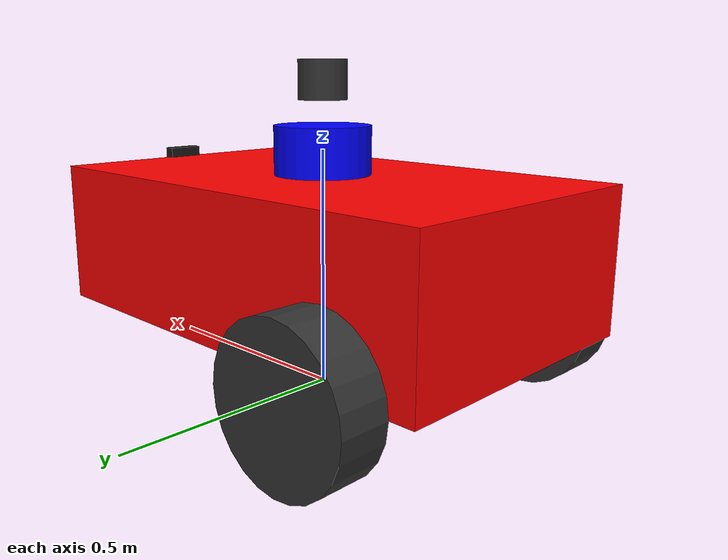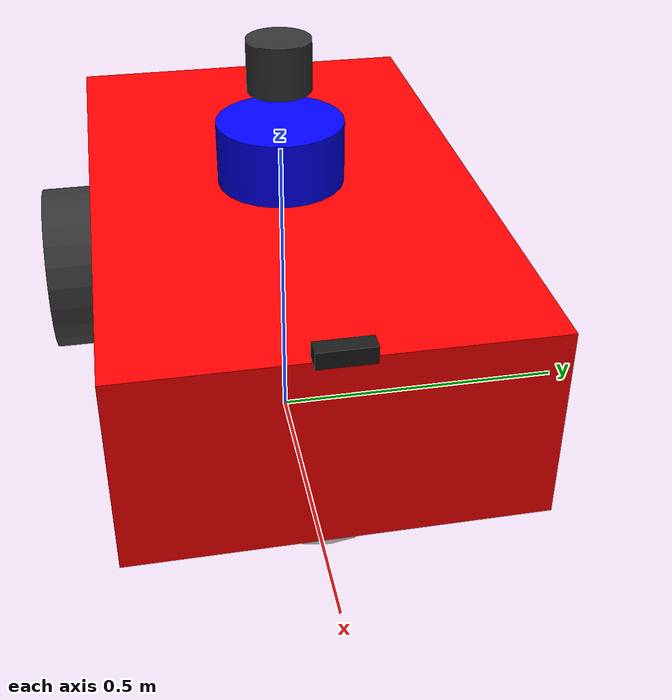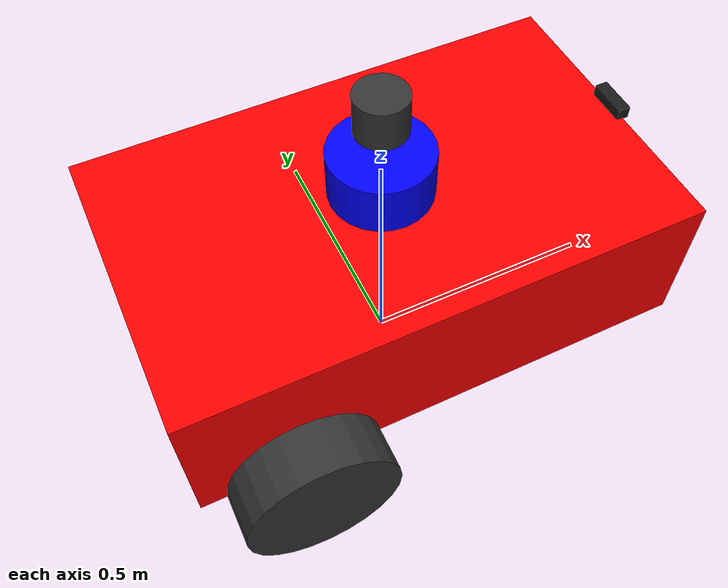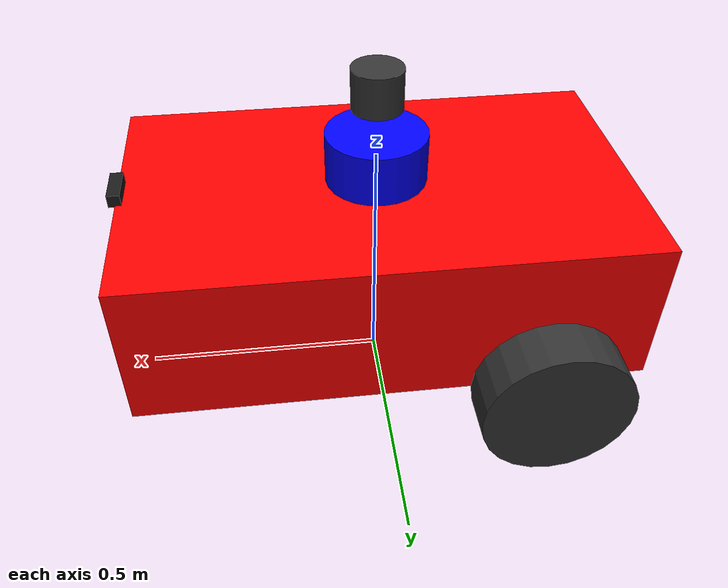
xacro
<?xml version="1.0"?>
<robot name= "diff_drive_robot" xmlns:xacro="http://www.ros.org/wiki/xacro">

<xacro:property name="pi_const" value="3.14159265" />

<xacro:property name="a" value="1.0" />
<xacro:property name="b" value="0.3" />
<xacro:property name="c" value="0.6" />

<xacro:property name = "r" value="0.15" />

<xacro:property name = "d" value ="0.1" />

<xacro:property name ="s1" value="${b/2+r}" />
<xacro:property name ="s2" value="${2*r}" />
<xacro:property name ="s3" value="${2*r}" />
<xacro:property name ="s4" value="${c/2+d/2}" />

<xacro:property name="d1" value="2710.0" />

<xacro:property name="d2" value="2710.0" />

<xacro:property name="d3" value="2710.0" />

<xacro:property name="m1" value="${d1*a*b*c}" /> <!-- Body Mass 500g-->
<xacro:property name="m2" value="${d2*pi_const*r*r*d}" />
<xacro:property name ="m3" value="${d3*(4.0/3.0)*pi_const*r*r*r}" />

<!-- Robot Body Inertia -->
<xacro:property name="Ix_body" value="${m1*(b*b+c*c)/12}" />
<xacro:property name="Iy_body" value="${m1*(a*a+b*b)/12}" />
<xacro:property name="Iz_body" value="${m1*(a*a+c*c)/12}" />

<!-- Wheel Inertia -->
<xacro:property name="Iz_wheel" value="${0.5*m2*r*r}" />
<xacro:property name="I_wheel" value="${ m2*(3.0*r*r + d*d)/12 }" />

<!-- Casttor Inertia -->
<xacro:property name="I_caster" value="${(2.0/5.0)*m3*r*r}" />

<!-- Inertia Body Macro -->
<xacro:macro name="inertia_body" params="name">
  <inertial>
    <origin rpy="0 0 0" xyz="0 0 ${s1}" />
    <mass value="${m1}" />
    <inertia ixx="${Ix_body}" ixy="0.0" ixz="0.0" iyy="${Iy_body}" iyz="0" izz="${Iz_body}" />
  </inertial>
</xacro:macro>

<!-- Inertia Wheel Macro -->
<xacro:macro name="inertia_wheel" params="name">
  <inertial>
    <origin rpy="1.570795 0 0" xyz="0 0 ${s2}" />
    <mass value="${m2}" />
    <inertia ixx="${I_wheel}" ixy="0.0" ixz="0.0" iyy="${I_wheel}" iyz="0" izz="${Iz_wheel}" />
  </inertial>
</xacro:macro>

<!-- Inertia Castor Macro -->
<xacro:macro name="inertia_caster" params="name">
  <inertial>
    <origin rpy="0 0 0" xyz="0 0 ${s2}" />
    <mass value="${m3}" />
    <inertia ixx="${I_caster}" ixy="0.0" ixz="0.0" iyy="${I_caster}" iyz="0" izz="${I_caster}" />
  </inertial>
</xacro:macro>

<xacro:include filename="$(find mobile_robot_description)/model/robot.gazebo" />

<!-- Links and Joints -->
<!-- Base link -->
<link name="base_footprint"> </link>
<joint name ="body_link_joint" type="fixed">
  <parent link="base_footprint" />
  <child link="body_link" />
</joint>

<!-- Body Link -->
<link name="body_link">
   <visual>
    <geometry>
      <box size="${a} ${c} ${b}" />
    </geometry>
    <material name="Red">
      <color rgba="1 0 0 1"/>
    </material>
    <origin rpy="0 0 0" xyz="0 0 ${s1}" />
    </visual>

    <collision>
      <geometry>
        <box size="${a} ${c} ${b}" />
      </geometry>
      <origin rpy="0 0 0" xyz="0 0 ${s1}" />
    </collision>
    <!-- Inertia macro -->
    <xacro:inertia_body name="body_link" />
</link>

<joint name="wheel1_joint" type="continuous">
  <parent link="body_link" />
  <child link="wheel1_link" />
  <origin rpy="0 0 0" xyz="${-s2} ${-s4} ${r}" />
  <axis xyz=" 0 1 0" />
  <limit effort = " 50000" velocity = "10" />
</joint>

<link name="wheel1_link">
  <visual>
    <geometry>
      <cylinder radius="${r}" length="${d}" />
    </geometry>
    <material name="DarkGrey">
      <color rgba="0.2 0.2 0.2 1"/>
    </material>
    <origin rpy="1.570795 0 0" xyz="0 0 0" />
  </visual>

  <collision>
    <geometry>
      <cylinder radius="${r}" length="${d}" />
    </geometry>
    <origin rpy="1.570795 0 0" xyz="0 0 0" />
  </collision>
  <!-- Inertia macro -->
  <xacro:inertia_wheel name="inertia_wheel" />
</link>

<joint name="wheel2_joint" type="continuous">
  <parent link="body_link" />
  <child link="wheel2_link" />
  <origin rpy="0 0 0" xyz="${-s2} ${s4} ${r}" />
  <axis xyz=" 0 1 0" />
  <limit effort = " 50000" velocity = "10" />
</joint>

<link name="wheel2_link">
  <visual>
    <geometry>
      <cylinder radius="${r}" length="${d}" />
    </geometry>
    <material name="DarkGrey">
      <color rgba="0.2 0.2 0.2 1"/>
    </material>
    <origin rpy="1.570795 0 0" xyz="0 0 0" />
  </visual>

  <collision>
    <geometry>
      <cylinder radius="${r}" length="${d}" />
    </geometry>
    <origin rpy="1.570795 0 0" xyz="0 0 0" />
  </collision>
  <!-- Inertia macro -->
  <xacro:inertia_wheel name="inertia_wheel" />
</link>

<joint name="caster_joint" type="fixed" >
    <parent link="body_link" />
    <child link="caster_link" />
    <origin rpy="0 0 0" xyz="${s3} 0 ${r}" />
</joint>

<link name="caster_link">
  <visual>
    <geometry>
      <sphere radius="${r}" />
    </geometry>
    <material name="LightGrey">
      <color rgba="0.75 0.75 0.75 1"/>
    </material>
    <origin rpy="0 0 0" xyz="0 0 0" />
  </visual>

  <collision>
    <geometry>
      <sphere radius="${r}" />
    </geometry>
    <origin rpy="0 0 0" xyz="0 0 0" />
  </collision>
  <!-- Inertia macro -->
  <xacro:inertia_caster name="inertia_caster"/>
</link>

<!-- IMU -->
<joint name="imu_joint" type="fixed">
    <parent link="body_link"/>
    <child link="imu_link"/>
    <origin xyz="0 0 ${s1}" rpy="0 0 0"/>
</joint>

<link name="imu_link">
    <visual>
        <geometry>
            <box size="0.02 0.02 0.02"/>
        </geometry>
        <material name="White">
            <color rgba="1 1 1 1"/>
        </material>
    </visual>
    <collision>
        <geometry>
            <box size="0.02 0.02 0.02"/>
        </geometry>
    </collision>
    <inertial>
        <mass value="0.01"/>
        <inertia ixx="0.000000167" ixy="0" ixz="0" iyy="0.000000167" iyz="0" izz="0.000000167"/>
    </inertial>
</link>

<!-- UNIFIED RGBD Camera -->
<joint name="rgbd_camera_joint" type="fixed">
    <parent link="body_link"/>
    <child link="rgbd_camera_link"/>
    <origin xyz="${a/2} 0 ${b+r+0.01}" rpy="0 0 0"/>
</joint>

<joint name="rgbd_camera_optical_joint" type="fixed">
    <parent link="rgbd_camera_link"/>
    <child link="rgbd_camera_optical_link"/>
    <!-- Try this rotation instead -->
    <origin xyz="0 0 0" rpy="0 0 0"/>
</joint>

<link name="rgbd_camera_optical_link"/>

<link name="rgbd_camera_link">
    <visual>
        <geometry>
            <box size="0.025 0.08 0.025"/>  <!-- RealSense D435 realistic dimensions -->
        </geometry>
        <material name="camera_black">
            <color rgba="0.1 0.1 0.1 1"/>
        </material>
        <origin xyz="0 0 0" rpy="0 0 0"/>
    </visual>

    <collision>
        <geometry>
            <box size="0.08 0.025 0.025"/>
        </geometry>
        <origin xyz="0 0 0" rpy="0 0 0"/>
    </collision>

    <inertial>
        <mass value="0.1"/>
        <origin xyz="0 0 0" rpy="0 0 0"/>
        <inertia ixx="0.0001" ixy="0.0" ixz="0.0"
                 iyy="0.0001" iyz="0.0"
                 izz="0.0001"/>
    </inertial>
</link>

<!-- 2d Lidar -->
<joint name ="lidar_joint" type="fixed">
  <origin rpy="0 0 0" xyz="0 0 ${b+r}" />
  <parent link="body_link" />
  <child link="lidar_link" />
  <axis xyz ="0 1 0" rpy="0 0 0" />
</joint>

<link name="lidar_link">
  <visual>
    <geometry>
      <cylinder radius="0.1" length="0.1" />
    </geometry>
    <material name="Blue">
      <color rgba="0 0 1 1"/>
    </material>
    <origin rpy="0 0 0" xyz="0 0 0.05" />
  </visual>

  <collision>
    <geometry>
      <cylinder radius="0.1" length="0.1" />
    </geometry>
    <origin rpy="0 0 0" xyz="0 0 0.05" />
  </collision>

  <inertial>
    <origin rpy="0 0 0" xyz="0 0 0" />
    <mass value="1e-6" />
    <inertia ixx="1e-6" ixy="0.0" ixz="0.0" iyy="1e-6" iyz="0.0" izz="1e-6" />
    </inertial>
</link>

<!-- 3D LiDAR -->
<joint name="lidar_3d_joint" type="fixed">
  <origin rpy="0 0 0" xyz="0 0 ${b+r+0.15}" />
  <parent link="body_link" />
  <child link="lidar_3d_link" />
  <axis xyz="0 1 0" rpy="0 0 0" />
</joint>

<link name="lidar_3d_link">
  <visual>
    <geometry>
      <cylinder radius="0.05" length="0.08" />
    </geometry>
    <material name="Black">
      <color rgba="0.2 0.2 0.2 1"/>
    </material>
    <origin rpy="0 0 0" xyz="0 0 0.04" />
  </visual>

  <collision>
    <geometry>
      <cylinder radius="0.05" length="0.08" />
    </geometry>
    <origin rpy="0 0 0" xyz="0 0 0.04" />
  </collision>

  <inertial>
    <origin rpy="0 0 0" xyz="0 0 0" />
    <mass value="0.5" />
    <inertia ixx="0.001" ixy="0.0" ixz="0.0" iyy="0.001" iyz="0.0" izz="0.001" />
  </inertial>
</link>

</robot>
